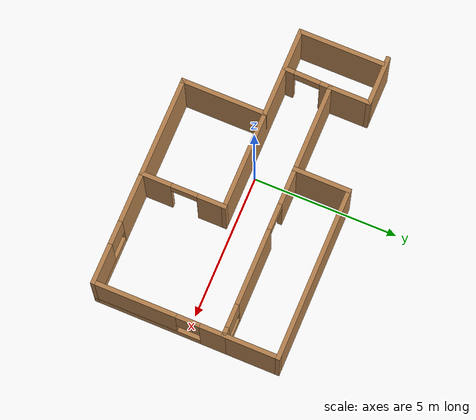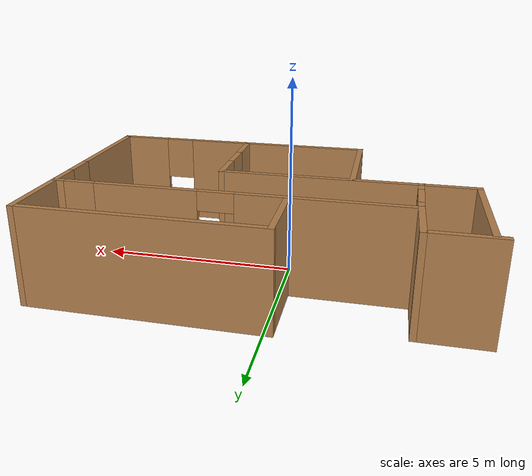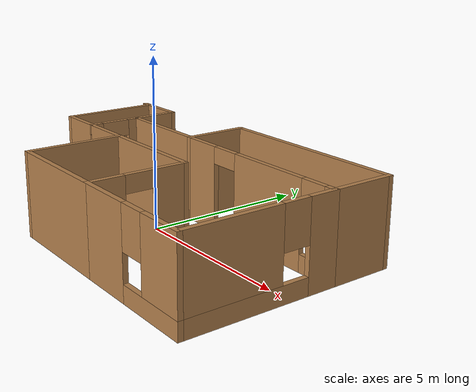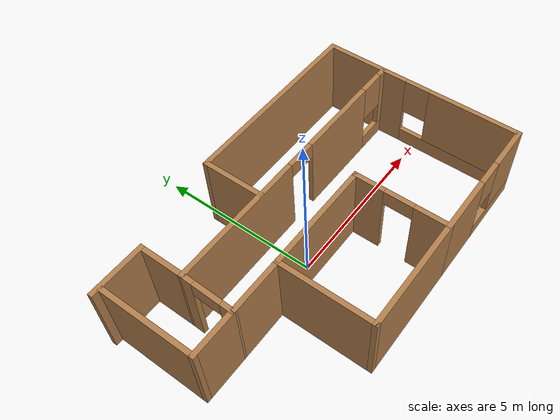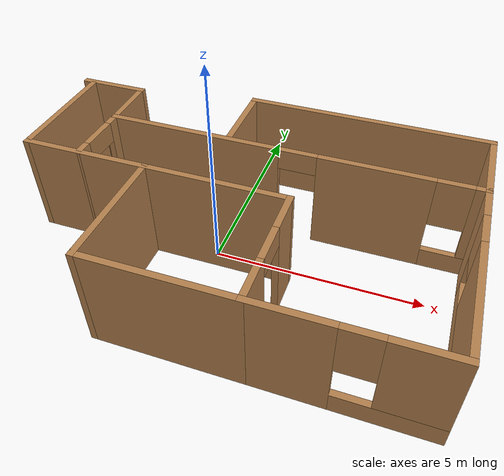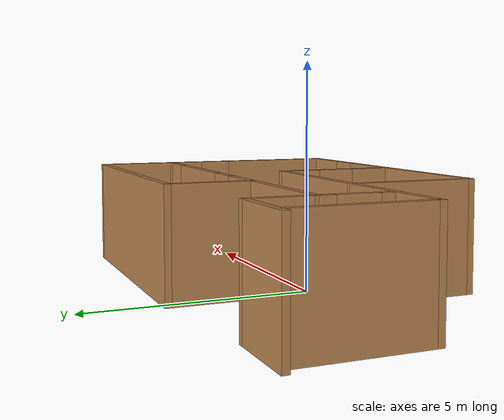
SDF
<?xml version='1.0'?>
<sdf version='1.6'>
  <model name='Custom_env'>
    <pose frame=''>0.487242 0.027806 0 0 -0 0</pose>
    <link name='Wall_10'>
      <pose frame=''>0.8 1.3 0 0 -0 0</pose>
      <visual name='Wall_10_Visual_0'>
        <pose frame=''>-2.33627 0 1.25 0 -0 0</pose>
        <geometry>
          <box>
            <size>4.29268 0.15 2.5</size>
          </box>
        </geometry>
        <material>
          <script>
            <uri>file://media/materials/scripts/gazebo.material</uri>
            <name>Gazebo/Wood</name>
          </script>
          <ambient>1 1 1 1</ambient>
        </material>
        <meta>
          <layer>0</layer>
        </meta>
      </visual>
      <collision name='Wall_10_Collision_0'>
        <geometry>
          <box>
            <size>4.29268 0.15 2.5</size>
          </box>
        </geometry>
        <pose frame=''>-2.33627 0 1.25 0 -0 0</pose>
      </collision>
      <visual name='Wall_10_Visual_1'>
        <pose frame=''>2.0242 0 1.25 0 -0 0</pose>
        <geometry>
          <box>
            <size>2.62826 0.15 2.5</size>
          </box>
        </geometry>
        <material>
          <script>
            <uri>file://media/materials/scripts/gazebo.material</uri>
            <name>Gazebo/Wood</name>
          </script>
          <ambient>1 1 1 1</ambient>
        </material>
        <meta>
          <layer>0</layer>
        </meta>
      </visual>
      <collision name='Wall_10_Collision_1'>
        <geometry>
          <box>
            <size>2.62826 0.15 2.5</size>
          </box>
        </geometry>
        <pose frame=''>2.0242 0 1.25 0 -0 0</pose>
      </collision>
      <visual name='Wall_10_Visual_2'>
        <pose frame=''>3.91047 0 0.25 0 -0 0</pose>
        <geometry>
          <box>
            <size>1.14428 0.15 0.5</size>
          </box>
        </geometry>
        <material>
          <script>
            <uri>file://media/materials/scripts/gazebo.material</uri>
            <name>Gazebo/Wood</name>
          </script>
          <ambient>1 1 1 1</ambient>
        </material>
        <meta>
          <layer>0</layer>
        </meta>
      </visual>
      <collision name='Wall_10_Collision_2'>
        <geometry>
          <box>
            <size>1.14428 0.15 0.5</size>
          </box>
        </geometry>
        <pose frame=''>3.91047 0 0.25 0 -0 0</pose>
      </collision>
      <visual name='Wall_10_Visual_3'>
        <pose frame=''>4.31047 0 1.5 0 -0 0</pose>
        <geometry>
          <box>
            <size>0.34428 0.15 2</size>
          </box>
        </geometry>
        <material>
          <script>
            <uri>file://media/materials/scripts/gazebo.material</uri>
            <name>Gazebo/Wood</name>
          </script>
          <ambient>1 1 1 1</ambient>
        </material>
        <meta>
          <layer>0</layer>
        </meta>
      </visual>
      <collision name='Wall_10_Collision_3'>
        <geometry>
          <box>
            <size>0.34428 0.15 2</size>
          </box>
        </geometry>
        <pose frame=''>4.31047 0 1.5 0 -0 0</pose>
      </collision>
      <visual name='Wall_10_Visual_4'>
        <pose frame=''>3.73833 0 1.9 0 -0 0</pose>
        <geometry>
          <box>
            <size>0.8 0.15 1.2</size>
          </box>
        </geometry>
        <material>
          <script>
            <uri>file://media/materials/scripts/gazebo.material</uri>
            <name>Gazebo/Wood</name>
          </script>
          <ambient>1 1 1 1</ambient>
        </material>
        <meta>
          <layer>0</layer>
        </meta>
      </visual>
      <collision name='Wall_10_Collision_4'>
        <geometry>
          <box>
            <size>0.8 0.15 1.2</size>
          </box>
        </geometry>
        <pose frame=''>3.73833 0 1.9 0 -0 0</pose>
      </collision>
      <visual name='Wall_10_Visual_5'>
        <pose frame=''>0.260068 0 2.25 0 -0 0</pose>
        <geometry>
          <box>
            <size>0.9 0.15 0.5</size>
          </box>
        </geometry>
        <material>
          <script>
            <uri>file://media/materials/scripts/gazebo.material</uri>
            <name>Gazebo/Wood</name>
          </script>
          <ambient>1 1 1 1</ambient>
        </material>
        <meta>
          <layer>0</layer>
        </meta>
      </visual>
      <collision name='Wall_10_Collision_5'>
        <geometry>
          <box>
            <size>0.9 0.15 0.5</size>
          </box>
        </geometry>
        <pose frame=''>0.260068 0 2.25 0 -0 0</pose>
      </collision>
    </link>
    <link name='Wall_11'>
      <pose frame=''>5.20761 -0.875 0 0 0 -1.5708</pose>
      <visual name='Wall_11_Visual_0'>
        <pose frame=''>-1.80486 0 1.25 0 -0 0</pose>
        <geometry>
          <box>
            <size>0.890275 0.15 2.5</size>
          </box>
        </geometry>
        <material>
          <script>
            <uri>file://media/materials/scripts/gazebo.material</uri>
            <name>Gazebo/Wood</name>
          </script>
          <ambient>1 1 1 1</ambient>
        </material>
        <meta>
          <layer>0</layer>
        </meta>
      </visual>
      <collision name='Wall_11_Collision_0'>
        <geometry>
          <box>
            <size>0.890275 0.15 2.5</size>
          </box>
        </geometry>
        <pose frame=''>-1.80486 0 1.25 0 -0 0</pose>
      </collision>
      <visual name='Wall_11_Visual_1'>
        <pose frame=''>0.445138 0 0.25 0 -0 0</pose>
        <geometry>
          <box>
            <size>3.60973 0.15 0.5</size>
          </box>
        </geometry>
        <material>
          <script>
            <uri>file://media/materials/scripts/gazebo.material</uri>
            <name>Gazebo/Wood</name>
          </script>
          <ambient>1 1 1 1</ambient>
        </material>
        <meta>
          <layer>0</layer>
        </meta>
      </visual>
      <collision name='Wall_11_Collision_1'>
        <geometry>
          <box>
            <size>3.60973 0.15 0.5</size>
          </box>
        </geometry>
        <pose frame=''>0.445138 0 0.25 0 -0 0</pose>
      </collision>
      <visual name='Wall_11_Visual_2'>
        <pose frame=''>0.845138 0 1.5 0 -0 0</pose>
        <geometry>
          <box>
            <size>2.80972 0.15 2</size>
          </box>
        </geometry>
        <material>
          <script>
            <uri>file://media/materials/scripts/gazebo.material</uri>
            <name>Gazebo/Wood</name>
          </script>
          <ambient>1 1 1 1</ambient>
        </material>
        <meta>
          <layer>0</layer>
        </meta>
      </visual>
      <collision name='Wall_11_Collision_2'>
        <geometry>
          <box>
            <size>2.80972 0.15 2</size>
          </box>
        </geometry>
        <pose frame=''>0.845138 0 1.5 0 -0 0</pose>
      </collision>
      <visual name='Wall_11_Visual_3'>
        <pose frame=''>-0.959725 0 1.9 0 -0 0</pose>
        <geometry>
          <box>
            <size>0.8 0.15 1.2</size>
          </box>
        </geometry>
        <material>
          <script>
            <uri>file://media/materials/scripts/gazebo.material</uri>
            <name>Gazebo/Wood</name>
          </script>
          <ambient>1 1 1 1</ambient>
        </material>
        <meta>
          <layer>0</layer>
        </meta>
      </visual>
      <collision name='Wall_11_Collision_3'>
        <geometry>
          <box>
            <size>0.8 0.15 1.2</size>
          </box>
        </geometry>
        <pose frame=''>-0.959725 0 1.9 0 -0 0</pose>
      </collision>
    </link>
    <link name='Wall_13'>
      <pose frame=''>3.28261 -3.15 0 0 -0 0</pose>
      <visual name='Wall_13_Visual_0'>
        <pose frame=''>-1.10547 0 1.25 0 -0 0</pose>
        <geometry>
          <box>
            <size>1.78905 0.15 2.5</size>
          </box>
        </geometry>
        <material>
          <script>
            <uri>file://media/materials/scripts/gazebo.material</uri>
            <name>Gazebo/Wood</name>
          </script>
          <ambient>1 1 1 1</ambient>
        </material>
        <meta>
          <layer>0</layer>
        </meta>
      </visual>
      <collision name='Wall_13_Collision_0'>
        <geometry>
          <box>
            <size>1.78905 0.15 2.5</size>
          </box>
        </geometry>
        <pose frame=''>-1.10547 0 1.25 0 -0 0</pose>
      </collision>
      <visual name='Wall_13_Visual_1'>
        <pose frame=''>0.894527 0 0.25 0 -0 0</pose>
        <geometry>
          <box>
            <size>2.21095 0.15 0.5</size>
          </box>
        </geometry>
        <material>
          <script>
            <uri>file://media/materials/scripts/gazebo.material</uri>
            <name>Gazebo/Wood</name>
          </script>
          <ambient>1 1 1 1</ambient>
        </material>
        <meta>
          <layer>0</layer>
        </meta>
      </visual>
      <collision name='Wall_13_Collision_1'>
        <geometry>
          <box>
            <size>2.21095 0.15 0.5</size>
          </box>
        </geometry>
        <pose frame=''>0.894527 0 0.25 0 -0 0</pose>
      </collision>
      <visual name='Wall_13_Visual_2'>
        <pose frame=''>1.29453 0 1.5 0 -0 0</pose>
        <geometry>
          <box>
            <size>1.41095 0.15 2</size>
          </box>
        </geometry>
        <material>
          <script>
            <uri>file://media/materials/scripts/gazebo.material</uri>
            <name>Gazebo/Wood</name>
          </script>
          <ambient>1 1 1 1</ambient>
        </material>
        <meta>
          <layer>0</layer>
        </meta>
      </visual>
      <collision name='Wall_13_Collision_2'>
        <geometry>
          <box>
            <size>1.41095 0.15 2</size>
          </box>
        </geometry>
        <pose frame=''>1.29453 0 1.5 0 -0 0</pose>
      </collision>
      <visual name='Wall_13_Visual_3'>
        <pose frame=''>0.189054 0 1.9 0 -0 0</pose>
        <geometry>
          <box>
            <size>0.8 0.15 1.2</size>
          </box>
        </geometry>
        <material>
          <script>
            <uri>file://media/materials/scripts/gazebo.material</uri>
            <name>Gazebo/Wood</name>
          </script>
          <ambient>1 1 1 1</ambient>
        </material>
        <meta>
          <layer>0</layer>
        </meta>
      </visual>
      <collision name='Wall_13_Collision_3'>
        <geometry>
          <box>
            <size>0.8 0.15 1.2</size>
          </box>
        </geometry>
        <pose frame=''>0.189054 0 1.9 0 -0 0</pose>
      </collision>
    </link>
    <link name='Wall_15'>
      <collision name='Wall_15_Collision'>
        <geometry>
          <box>
            <size>3.5 0.15 2.5</size>
          </box>
        </geometry>
        <pose frame=''>0 0 1.25 0 -0 0</pose>
      </collision>
      <visual name='Wall_15_Visual'>
        <pose frame=''>0 0 1.25 0 -0 0</pose>
        <geometry>
          <box>
            <size>3.5 0.15 2.5</size>
          </box>
        </geometry>
        <material>
          <script>
            <uri>file://media/materials/scripts/gazebo.material</uri>
            <name>Gazebo/Wood</name>
          </script>
          <ambient>1 1 1 1</ambient>
        </material>
        <meta>
          <layer>0</layer>
        </meta>
      </visual>
      <pose frame=''>-0.317391 -3.15 0 0 -0 3.14159</pose>
    </link>
    <link name='Wall_16'>
      <collision name='Wall_16_Collision'>
        <geometry>
          <box>
            <size>3 0.15 2.5</size>
          </box>
        </geometry>
        <pose frame=''>0 0 1.25 0 -0 0</pose>
      </collision>
      <visual name='Wall_16_Visual'>
        <pose frame=''>0 0 1.25 0 -0 0</pose>
        <geometry>
          <box>
            <size>3 0.15 2.5</size>
          </box>
        </geometry>
        <material>
          <script>
            <uri>file://media/materials/scripts/gazebo.material</uri>
            <name>Gazebo/Wood</name>
          </script>
          <ambient>1 1 1 1</ambient>
        </material>
        <meta>
          <layer>0</layer>
        </meta>
      </visual>
      <pose frame=''>-1.99239 -1.725 0 0 -0 1.5708</pose>
    </link>
    <link name='Wall_18'>
      <collision name='Wall_18_Collision'>
        <geometry>
          <box>
            <size>2 0.15 2.5</size>
          </box>
        </geometry>
        <pose frame=''>0 0 1.25 0 -0 0</pose>
      </collision>
      <visual name='Wall_18_Visual'>
        <pose frame=''>0 0 1.25 0 -0 0</pose>
        <geometry>
          <box>
            <size>2 0.15 2.5</size>
          </box>
        </geometry>
        <material>
          <script>
            <uri>file://media/materials/scripts/gazebo.material</uri>
            <name>Gazebo/Wood</name>
          </script>
          <ambient>1 1 1 1</ambient>
        </material>
        <meta>
          <layer>0</layer>
        </meta>
      </visual>
      <pose frame=''>5.20761 2.225 0 0 -0 1.5708</pose>
    </link>
    <link name='Wall_19'>
      <collision name='Wall_19_Collision'>
        <geometry>
          <box>
            <size>6 0.15 2.5</size>
          </box>
        </geometry>
        <pose frame=''>0 0 1.25 0 -0 0</pose>
      </collision>
      <visual name='Wall_19_Visual'>
        <pose frame=''>0 0 1.25 0 -0 0</pose>
        <geometry>
          <box>
            <size>6 0.15 2.5</size>
          </box>
        </geometry>
        <material>
          <script>
            <uri>file://media/materials/scripts/gazebo.material</uri>
            <name>Gazebo/Wood</name>
          </script>
          <ambient>1 1 1 1</ambient>
        </material>
        <meta>
          <layer>0</layer>
        </meta>
      </visual>
      <pose frame=''>2.28261 3.15 0 0 -0 3.14159</pose>
    </link>
    <link name='Wall_20'>
      <collision name='Wall_20_Collision'>
        <geometry>
          <box>
            <size>2 0.15 2.5</size>
          </box>
        </geometry>
        <pose frame=''>0 0 1.25 0 -0 0</pose>
      </collision>
      <visual name='Wall_20_Visual'>
        <pose frame=''>0 0 1.25 0 -0 0</pose>
        <geometry>
          <box>
            <size>2 0.15 2.5</size>
          </box>
        </geometry>
        <material>
          <script>
            <uri>file://media/materials/scripts/gazebo.material</uri>
            <name>Gazebo/Wood</name>
          </script>
          <ambient>1 1 1 1</ambient>
        </material>
        <meta>
          <layer>0</layer>
        </meta>
      </visual>
      <pose frame=''>-0.642392 2.225 0 0 0 -1.5708</pose>
    </link>
    <link name='Wall_23'>
      <collision name='Wall_23_Collision'>
        <geometry>
          <box>
            <size>1.5 0.15 2.5</size>
          </box>
        </geometry>
        <pose frame=''>0 0 1.25 0 -0 0</pose>
      </collision>
      <visual name='Wall_23_Visual'>
        <pose frame=''>0 0 1.25 0 -0 0</pose>
        <geometry>
          <box>
            <size>1.5 0.15 2.5</size>
          </box>
        </geometry>
        <material>
          <script>
            <uri>file://media/materials/scripts/gazebo.material</uri>
            <name>Gazebo/Wood</name>
          </script>
          <ambient>1 1 1 1</ambient>
        </material>
        <meta>
          <layer>0</layer>
        </meta>
      </visual>
      <pose frame=''>-3.60761 1.975 0 0 -0 1.5708</pose>
    </link>
    <link name='Wall_24'>
      <collision name='Wall_24_Collision'>
        <geometry>
          <box>
            <size>1.75 0.15 2.5</size>
          </box>
        </geometry>
        <pose frame=''>0 0 1.25 0 -0 0</pose>
      </collision>
      <visual name='Wall_24_Visual'>
        <pose frame=''>0 0 1.25 0 -0 0</pose>
        <geometry>
          <box>
            <size>1.75 0.15 2.5</size>
          </box>
        </geometry>
        <material>
          <script>
            <uri>file://media/materials/scripts/gazebo.material</uri>
            <name>Gazebo/Wood</name>
          </script>
          <ambient>1 1 1 1</ambient>
        </material>
        <meta>
          <layer>0</layer>
        </meta>
      </visual>
      <pose frame=''>-4.40761 2.65 0 0 -0 3.14159</pose>
    </link>
    <link name='Wall_4'>
      <pose frame=''>1.35761 -1.725 0 0 -0 1.5708</pose>
      <visual name='Wall_4_Visual_0'>
        <pose frame=''>-0.951297 0 1.25 0 -0 0</pose>
        <geometry>
          <box>
            <size>1.09741 0.15 2.5</size>
          </box>
        </geometry>
        <material>
          <script>
            <uri>file://media/materials/scripts/gazebo.material</uri>
            <name>Gazebo/Wood</name>
          </script>
          <ambient>1 1 1 1</ambient>
        </material>
        <meta>
          <layer>0</layer>
        </meta>
      </visual>
      <collision name='Wall_4_Collision_0'>
        <geometry>
          <box>
            <size>1.09741 0.15 2.5</size>
          </box>
        </geometry>
        <pose frame=''>-0.951297 0 1.25 0 -0 0</pose>
      </collision>
      <visual name='Wall_4_Visual_1'>
        <pose frame=''>0.998703 0 1.25 0 -0 0</pose>
        <geometry>
          <box>
            <size>1.00259 0.15 2.5</size>
          </box>
        </geometry>
        <material>
          <script>
            <uri>file://media/materials/scripts/gazebo.material</uri>
            <name>Gazebo/Wood</name>
          </script>
          <ambient>1 1 1 1</ambient>
        </material>
        <meta>
          <layer>0</layer>
        </meta>
      </visual>
      <collision name='Wall_4_Collision_1'>
        <geometry>
          <box>
            <size>1.00259 0.15 2.5</size>
          </box>
        </geometry>
        <pose frame=''>0.998703 0 1.25 0 -0 0</pose>
      </collision>
      <visual name='Wall_4_Visual_2'>
        <pose frame=''>0.047406 0 2.25 0 -0 0</pose>
        <geometry>
          <box>
            <size>0.9 0.15 0.5</size>
          </box>
        </geometry>
        <material>
          <script>
            <uri>file://media/materials/scripts/gazebo.material</uri>
            <name>Gazebo/Wood</name>
          </script>
          <ambient>1 1 1 1</ambient>
        </material>
        <meta>
          <layer>0</layer>
        </meta>
      </visual>
      <collision name='Wall_4_Collision_2'>
        <geometry>
          <box>
            <size>0.9 0.15 0.5</size>
          </box>
        </geometry>
        <pose frame=''>0.047406 0 2.25 0 -0 0</pose>
      </collision>
    </link>
    <link name='Wall_5'>
      <collision name='Wall_5_Collision'>
        <geometry>
          <box>
            <size>6.5 0.15 2.5</size>
          </box>
        </geometry>
        <pose frame=''>0 0 1.25 0 -0 0</pose>
      </collision>
      <visual name='Wall_5_Visual'>
        <pose frame=''>0 0 1.25 0 -0 0</pose>
        <geometry>
          <box>
            <size>6.5 0.15 2.5</size>
          </box>
        </geometry>
        <material>
          <script>
            <uri>file://media/materials/scripts/gazebo.material</uri>
            <name>Gazebo/Wood</name>
          </script>
          <ambient>1 1 1 1</ambient>
        </material>
        <meta>
          <layer>0</layer>
        </meta>
      </visual>
      <pose frame=''>-1.81739 -0.3 0 0 -0 3.14159</pose>
    </link>
    <link name='Wall_6'>
      <collision name='Wall_6_Collision'>
        <geometry>
          <box>
            <size>3 0.15 2.5</size>
          </box>
        </geometry>
        <pose frame=''>0 0 1.25 0 -0 0</pose>
      </collision>
      <visual name='Wall_6_Visual'>
        <pose frame=''>0 0 1.25 0 -0 0</pose>
        <geometry>
          <box>
            <size>3 0.15 2.5</size>
          </box>
        </geometry>
        <material>
          <script>
            <uri>file://media/materials/scripts/gazebo.material</uri>
            <name>Gazebo/Wood</name>
          </script>
          <ambient>1 1 1 1</ambient>
        </material>
        <meta>
          <layer>0</layer>
        </meta>
      </visual>
      <pose frame=''>-4.99239 1.125 0 0 -0 1.5708</pose>
    </link>
    <link name='Wall_8'>
      <pose frame=''>-3.625 0.5 0 0 0 -1.59253</pose>
      <visual name='Wall_8_Visual_0'>
        <pose frame=''>-0.663591 0 1.25 0 -0 0</pose>
        <geometry>
          <box>
            <size>0.422818 0.15 2.5</size>
          </box>
        </geometry>
        <material>
          <script>
            <uri>file://media/materials/scripts/gazebo.material</uri>
            <name>Gazebo/Wood</name>
          </script>
          <ambient>1 1 1 1</ambient>
        </material>
        <meta>
          <layer>0</layer>
        </meta>
      </visual>
      <collision name='Wall_8_Collision_0'>
        <geometry>
          <box>
            <size>0.422818 0.15 2.5</size>
          </box>
        </geometry>
        <pose frame=''>-0.663591 0 1.25 0 -0 0</pose>
      </collision>
      <visual name='Wall_8_Visual_1'>
        <pose frame=''>0.661409 0 1.25 0 -0 0</pose>
        <geometry>
          <box>
            <size>0.427182 0.15 2.5</size>
          </box>
        </geometry>
        <material>
          <script>
            <uri>file://media/materials/scripts/gazebo.material</uri>
            <name>Gazebo/Wood</name>
          </script>
          <ambient>1 1 1 1</ambient>
        </material>
        <meta>
          <layer>0</layer>
        </meta>
      </visual>
      <collision name='Wall_8_Collision_1'>
        <geometry>
          <box>
            <size>0.427182 0.15 2.5</size>
          </box>
        </geometry>
        <pose frame=''>0.661409 0 1.25 0 -0 0</pose>
      </collision>
      <visual name='Wall_8_Visual_2'>
        <pose frame=''>-0.002182 0 2.25 0 -0 0</pose>
        <geometry>
          <box>
            <size>0.9 0.15 0.5</size>
          </box>
        </geometry>
        <material>
          <script>
            <uri>file://media/materials/scripts/gazebo.material</uri>
            <name>Gazebo/Wood</name>
          </script>
          <ambient>1 1 1 1</ambient>
        </material>
        <meta>
          <layer>0</layer>
        </meta>
      </visual>
      <collision name='Wall_8_Collision_2'>
        <geometry>
          <box>
            <size>0.9 0.15 0.5</size>
          </box>
        </geometry>
        <pose frame=''>-0.002182 0 2.25 0 -0 0</pose>
      </collision>
    </link>
    <static>1</static>
  </model>
</sdf>
